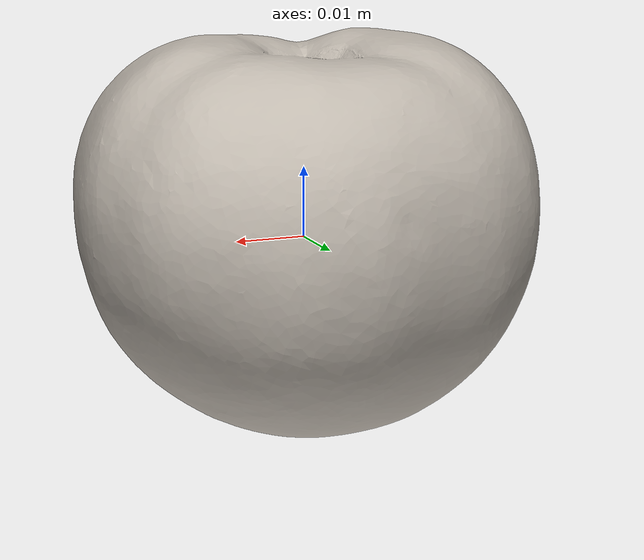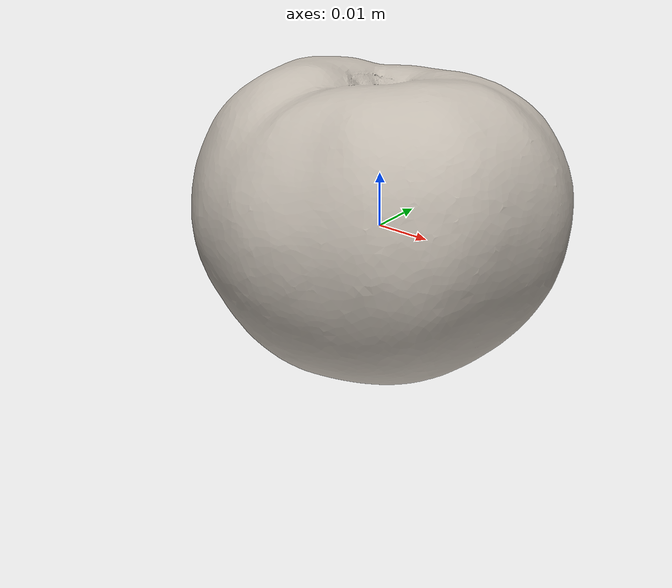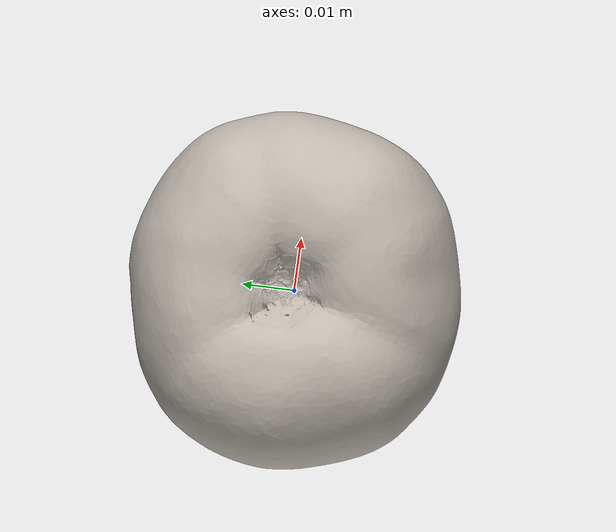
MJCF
<mujoco model="tomato_4">
  <asset>
    <mesh file="visual/model_normalized_0.obj" name="model_normalized_0_vis" scale="0.06500000000000003 0.06500000000000003 0.06500000000000003" refquat="1.0 0.0 0.0 0.0"/>
    <mesh file="collision/model_normalized_collision_22.obj" name="model_normalized_collision_22._coll" scale="0.06500000000000003 0.06500000000000003 0.06500000000000003" refquat="1.0 0.0 0.0 0.0"/>
    <mesh file="collision/model_normalized_collision_23.obj" name="model_normalized_collision_23._coll" scale="0.06500000000000003 0.06500000000000003 0.06500000000000003" refquat="1.0 0.0 0.0 0.0"/>
    <mesh file="collision/model_normalized_collision_21.obj" name="model_normalized_collision_21._coll" scale="0.06500000000000003 0.06500000000000003 0.06500000000000003" refquat="1.0 0.0 0.0 0.0"/>
    <mesh file="collision/model_normalized_collision_20.obj" name="model_normalized_collision_20._coll" scale="0.06500000000000003 0.06500000000000003 0.06500000000000003" refquat="1.0 0.0 0.0 0.0"/>
    <mesh file="collision/model_normalized_collision_24.obj" name="model_normalized_collision_24._coll" scale="0.06500000000000003 0.06500000000000003 0.06500000000000003" refquat="1.0 0.0 0.0 0.0"/>
    <mesh file="collision/model_normalized_collision_30.obj" name="model_normalized_collision_30._coll" scale="0.06500000000000003 0.06500000000000003 0.06500000000000003" refquat="1.0 0.0 0.0 0.0"/>
    <mesh file="collision/model_normalized_collision_18.obj" name="model_normalized_collision_18._coll" scale="0.06500000000000003 0.06500000000000003 0.06500000000000003" refquat="1.0 0.0 0.0 0.0"/>
    <mesh file="collision/model_normalized_collision_19.obj" name="model_normalized_collision_19._coll" scale="0.06500000000000003 0.06500000000000003 0.06500000000000003" refquat="1.0 0.0 0.0 0.0"/>
    <mesh file="collision/model_normalized_collision_31.obj" name="model_normalized_collision_31._coll" scale="0.06500000000000003 0.06500000000000003 0.06500000000000003" refquat="1.0 0.0 0.0 0.0"/>
    <mesh file="collision/model_normalized_collision_25.obj" name="model_normalized_collision_25._coll" scale="0.06500000000000003 0.06500000000000003 0.06500000000000003" refquat="1.0 0.0 0.0 0.0"/>
    <mesh file="collision/model_normalized_collision_27.obj" name="model_normalized_collision_27._coll" scale="0.06500000000000003 0.06500000000000003 0.06500000000000003" refquat="1.0 0.0 0.0 0.0"/>
    <mesh file="collision/model_normalized_collision_26.obj" name="model_normalized_collision_26._coll" scale="0.06500000000000003 0.06500000000000003 0.06500000000000003" refquat="1.0 0.0 0.0 0.0"/>
    <mesh file="collision/model_normalized_collision_9.obj" name="model_normalized_collision_9._coll" scale="0.06500000000000003 0.06500000000000003 0.06500000000000003" refquat="1.0 0.0 0.0 0.0"/>
    <mesh file="collision/model_normalized_collision_8.obj" name="model_normalized_collision_8._coll" scale="0.06500000000000003 0.06500000000000003 0.06500000000000003" refquat="1.0 0.0 0.0 0.0"/>
    <mesh file="collision/model_normalized_collision_6.obj" name="model_normalized_collision_6._coll" scale="0.06500000000000003 0.06500000000000003 0.06500000000000003" refquat="1.0 0.0 0.0 0.0"/>
    <mesh file="collision/model_normalized_collision_7.obj" name="model_normalized_collision_7._coll" scale="0.06500000000000003 0.06500000000000003 0.06500000000000003" refquat="1.0 0.0 0.0 0.0"/>
    <mesh file="collision/model_normalized_collision_5.obj" name="model_normalized_collision_5._coll" scale="0.06500000000000003 0.06500000000000003 0.06500000000000003" refquat="1.0 0.0 0.0 0.0"/>
    <mesh file="collision/model_normalized_collision_4.obj" name="model_normalized_collision_4._coll" scale="0.06500000000000003 0.06500000000000003 0.06500000000000003" refquat="1.0 0.0 0.0 0.0"/>
    <mesh file="collision/model_normalized_collision_0.obj" name="model_normalized_collision_0._coll" scale="0.06500000000000003 0.06500000000000003 0.06500000000000003" refquat="1.0 0.0 0.0 0.0"/>
    <mesh file="collision/model_normalized_collision_1.obj" name="model_normalized_collision_1._coll" scale="0.06500000000000003 0.06500000000000003 0.06500000000000003" refquat="1.0 0.0 0.0 0.0"/>
    <mesh file="collision/model_normalized_collision_3.obj" name="model_normalized_collision_3._coll" scale="0.06500000000000003 0.06500000000000003 0.06500000000000003" refquat="1.0 0.0 0.0 0.0"/>
    <mesh file="collision/model_normalized_collision_2.obj" name="model_normalized_collision_2._coll" scale="0.06500000000000003 0.06500000000000003 0.06500000000000003" refquat="1.0 0.0 0.0 0.0"/>
    <mesh file="collision/model_normalized_collision_17.obj" name="model_normalized_collision_17._coll" scale="0.06500000000000003 0.06500000000000003 0.06500000000000003" refquat="1.0 0.0 0.0 0.0"/>
    <mesh file="collision/model_normalized_collision_16.obj" name="model_normalized_collision_16._coll" scale="0.06500000000000003 0.06500000000000003 0.06500000000000003" refquat="1.0 0.0 0.0 0.0"/>
    <mesh file="collision/model_normalized_collision_28.obj" name="model_normalized_collision_28._coll" scale="0.06500000000000003 0.06500000000000003 0.06500000000000003" refquat="1.0 0.0 0.0 0.0"/>
    <mesh file="collision/model_normalized_collision_14.obj" name="model_normalized_collision_14._coll" scale="0.06500000000000003 0.06500000000000003 0.06500000000000003" refquat="1.0 0.0 0.0 0.0"/>
    <mesh file="collision/model_normalized_collision_15.obj" name="model_normalized_collision_15._coll" scale="0.06500000000000003 0.06500000000000003 0.06500000000000003" refquat="1.0 0.0 0.0 0.0"/>
    <mesh file="collision/model_normalized_collision_29.obj" name="model_normalized_collision_29._coll" scale="0.06500000000000003 0.06500000000000003 0.06500000000000003" refquat="1.0 0.0 0.0 0.0"/>
    <mesh file="collision/model_normalized_collision_11.obj" name="model_normalized_collision_11._coll" scale="0.06500000000000003 0.06500000000000003 0.06500000000000003" refquat="1.0 0.0 0.0 0.0"/>
    <mesh file="collision/model_normalized_collision_10.obj" name="model_normalized_collision_10._coll" scale="0.06500000000000003 0.06500000000000003 0.06500000000000003" refquat="1.0 0.0 0.0 0.0"/>
    <mesh file="collision/model_normalized_collision_12.obj" name="model_normalized_collision_12._coll" scale="0.06500000000000003 0.06500000000000003 0.06500000000000003" refquat="1.0 0.0 0.0 0.0"/>
    <mesh file="collision/model_normalized_collision_13.obj" name="model_normalized_collision_13._coll" scale="0.06500000000000003 0.06500000000000003 0.06500000000000003" refquat="1.0 0.0 0.0 0.0"/>
    <texture type="2d" name="image0" file="visual/image0.png"/>
    <material name="material0.023" texture="image0" specular="0.5" shininess="0.25"/>
  </asset>
  <worldbody>
    <body>
      <body name="object">
        <geom solimp="0.998 0.998 0.001" solref="0.001 1" density="100" friction="0.95 0.3 0.1" type="mesh" mesh="model_normalized_0_vis" conaffinity="0" contype="0" group="1" material="material0.023"/>
        <geom solimp="0.998 0.998 0.001" solref="0.001 1" density="100" friction="0.95 0.3 0.1" type="mesh" mesh="model_normalized_collision_22._coll" group="0" rgba="0.8 0.8 0.8 0.0"/>
        <geom solimp="0.998 0.998 0.001" solref="0.001 1" density="100" friction="0.95 0.3 0.1" type="mesh" mesh="model_normalized_collision_23._coll" group="0" rgba="0.8 0.8 0.8 0.0"/>
        <geom solimp="0.998 0.998 0.001" solref="0.001 1" density="100" friction="0.95 0.3 0.1" type="mesh" mesh="model_normalized_collision_21._coll" group="0" rgba="0.8 0.8 0.8 0.0"/>
        <geom solimp="0.998 0.998 0.001" solref="0.001 1" density="100" friction="0.95 0.3 0.1" type="mesh" mesh="model_normalized_collision_20._coll" group="0" rgba="0.8 0.8 0.8 0.0"/>
        <geom solimp="0.998 0.998 0.001" solref="0.001 1" density="100" friction="0.95 0.3 0.1" type="mesh" mesh="model_normalized_collision_24._coll" group="0" rgba="0.8 0.8 0.8 0.0"/>
        <geom solimp="0.998 0.998 0.001" solref="0.001 1" density="100" friction="0.95 0.3 0.1" type="mesh" mesh="model_normalized_collision_30._coll" group="0" rgba="0.8 0.8 0.8 0.0"/>
        <geom solimp="0.998 0.998 0.001" solref="0.001 1" density="100" friction="0.95 0.3 0.1" type="mesh" mesh="model_normalized_collision_18._coll" group="0" rgba="0.8 0.8 0.8 0.0"/>
        <geom solimp="0.998 0.998 0.001" solref="0.001 1" density="100" friction="0.95 0.3 0.1" type="mesh" mesh="model_normalized_collision_19._coll" group="0" rgba="0.8 0.8 0.8 0.0"/>
        <geom solimp="0.998 0.998 0.001" solref="0.001 1" density="100" friction="0.95 0.3 0.1" type="mesh" mesh="model_normalized_collision_31._coll" group="0" rgba="0.8 0.8 0.8 0.0"/>
        <geom solimp="0.998 0.998 0.001" solref="0.001 1" density="100" friction="0.95 0.3 0.1" type="mesh" mesh="model_normalized_collision_25._coll" group="0" rgba="0.8 0.8 0.8 0.0"/>
        <geom solimp="0.998 0.998 0.001" solref="0.001 1" density="100" friction="0.95 0.3 0.1" type="mesh" mesh="model_normalized_collision_27._coll" group="0" rgba="0.8 0.8 0.8 0.0"/>
        <geom solimp="0.998 0.998 0.001" solref="0.001 1" density="100" friction="0.95 0.3 0.1" type="mesh" mesh="model_normalized_collision_26._coll" group="0" rgba="0.8 0.8 0.8 0.0"/>
        <geom solimp="0.998 0.998 0.001" solref="0.001 1" density="100" friction="0.95 0.3 0.1" type="mesh" mesh="model_normalized_collision_9._coll" group="0" rgba="0.8 0.8 0.8 0.0"/>
        <geom solimp="0.998 0.998 0.001" solref="0.001 1" density="100" friction="0.95 0.3 0.1" type="mesh" mesh="model_normalized_collision_8._coll" group="0" rgba="0.8 0.8 0.8 0.0"/>
        <geom solimp="0.998 0.998 0.001" solref="0.001 1" density="100" friction="0.95 0.3 0.1" type="mesh" mesh="model_normalized_collision_6._coll" group="0" rgba="0.8 0.8 0.8 0.0"/>
        <geom solimp="0.998 0.998 0.001" solref="0.001 1" density="100" friction="0.95 0.3 0.1" type="mesh" mesh="model_normalized_collision_7._coll" group="0" rgba="0.8 0.8 0.8 0.0"/>
        <geom solimp="0.998 0.998 0.001" solref="0.001 1" density="100" friction="0.95 0.3 0.1" type="mesh" mesh="model_normalized_collision_5._coll" group="0" rgba="0.8 0.8 0.8 0.0"/>
        <geom solimp="0.998 0.998 0.001" solref="0.001 1" density="100" friction="0.95 0.3 0.1" type="mesh" mesh="model_normalized_collision_4._coll" group="0" rgba="0.8 0.8 0.8 0.0"/>
        <geom solimp="0.998 0.998 0.001" solref="0.001 1" density="100" friction="0.95 0.3 0.1" type="mesh" mesh="model_normalized_collision_0._coll" group="0" rgba="0.8 0.8 0.8 0.0"/>
        <geom solimp="0.998 0.998 0.001" solref="0.001 1" density="100" friction="0.95 0.3 0.1" type="mesh" mesh="model_normalized_collision_1._coll" group="0" rgba="0.8 0.8 0.8 0.0"/>
        <geom solimp="0.998 0.998 0.001" solref="0.001 1" density="100" friction="0.95 0.3 0.1" type="mesh" mesh="model_normalized_collision_3._coll" group="0" rgba="0.8 0.8 0.8 0.0"/>
        <geom solimp="0.998 0.998 0.001" solref="0.001 1" density="100" friction="0.95 0.3 0.1" type="mesh" mesh="model_normalized_collision_2._coll" group="0" rgba="0.8 0.8 0.8 0.0"/>
        <geom solimp="0.998 0.998 0.001" solref="0.001 1" density="100" friction="0.95 0.3 0.1" type="mesh" mesh="model_normalized_collision_17._coll" group="0" rgba="0.8 0.8 0.8 0.0"/>
        <geom solimp="0.998 0.998 0.001" solref="0.001 1" density="100" friction="0.95 0.3 0.1" type="mesh" mesh="model_normalized_collision_16._coll" group="0" rgba="0.8 0.8 0.8 0.0"/>
        <geom solimp="0.998 0.998 0.001" solref="0.001 1" density="100" friction="0.95 0.3 0.1" type="mesh" mesh="model_normalized_collision_28._coll" group="0" rgba="0.8 0.8 0.8 0.0"/>
        <geom solimp="0.998 0.998 0.001" solref="0.001 1" density="100" friction="0.95 0.3 0.1" type="mesh" mesh="model_normalized_collision_14._coll" group="0" rgba="0.8 0.8 0.8 0.0"/>
        <geom solimp="0.998 0.998 0.001" solref="0.001 1" density="100" friction="0.95 0.3 0.1" type="mesh" mesh="model_normalized_collision_15._coll" group="0" rgba="0.8 0.8 0.8 0.0"/>
        <geom solimp="0.998 0.998 0.001" solref="0.001 1" density="100" friction="0.95 0.3 0.1" type="mesh" mesh="model_normalized_collision_29._coll" group="0" rgba="0.8 0.8 0.8 0.0"/>
        <geom solimp="0.998 0.998 0.001" solref="0.001 1" density="100" friction="0.95 0.3 0.1" type="mesh" mesh="model_normalized_collision_11._coll" group="0" rgba="0.8 0.8 0.8 0.0"/>
        <geom solimp="0.998 0.998 0.001" solref="0.001 1" density="100" friction="0.95 0.3 0.1" type="mesh" mesh="model_normalized_collision_10._coll" group="0" rgba="0.8 0.8 0.8 0.0"/>
        <geom solimp="0.998 0.998 0.001" solref="0.001 1" density="100" friction="0.95 0.3 0.1" type="mesh" mesh="model_normalized_collision_12._coll" group="0" rgba="0.8 0.8 0.8 0.0"/>
        <geom solimp="0.998 0.998 0.001" solref="0.001 1" density="100" friction="0.95 0.3 0.1" type="mesh" mesh="model_normalized_collision_13._coll" group="0" rgba="0.8 0.8 0.8 0.0"/>
      </body>
      <site rgba="0 0 0 0" size="0.005" pos="-7.084577499999914e-05 -0.00015003235000000107 -0.027757886650000015" name="bottom_site"/>
      <site rgba="0 0 0 0" size="0.005" pos="-7.084577499999914e-05 -0.00015003235000000107 0.028192089900000012" name="top_site"/>
      <site rgba="0 0 0 0" size="0.005" pos="0.031936164650000015 0.03044503930000001 0.00021710162499999987" name="horizontal_radius_site"/>
    </body>
  </worldbody>
</mujoco>
